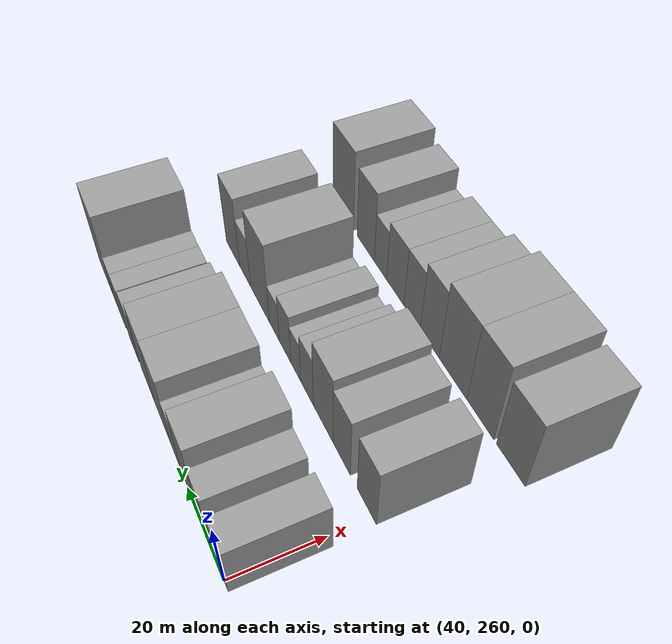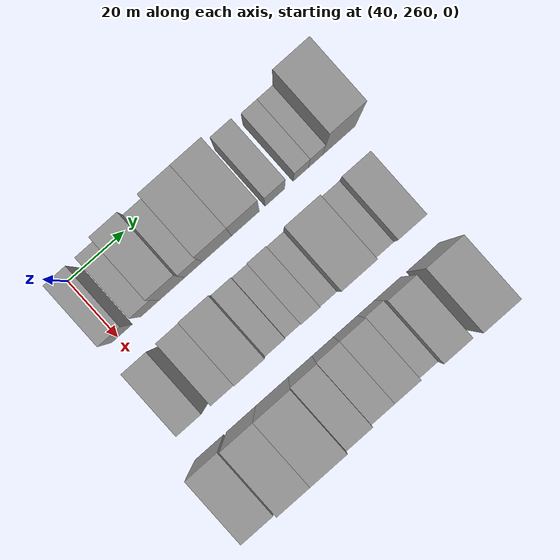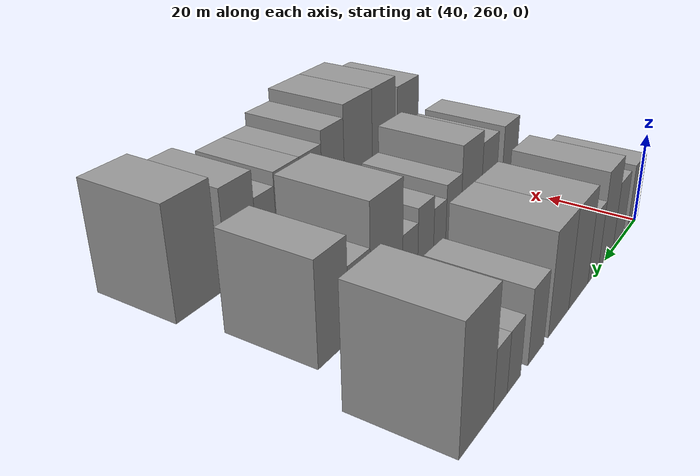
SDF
<sdf version="1.6">
 <world name="default">
  <model name="building_68">
   <static>1</static>
   <pose>50.0000 261.5313 0 0.000000 0.000000 0.000000</pose>
   <link name="link">
    <pose>0 0 7.50 0 0 0</pose>
    <collision name="collision"><geometry><box><size>20.0000 7.3618 15.0000</size></box></geometry></collision>
    <visual name="visual">
     <cast_shadows>0</cast_shadows>
     <geometry><box><size>20.0000 7.3618 15.0000</size></box></geometry>
     <material>
      <script>
       <uri>model://grey_wall/materials/scripts</uri>
       <uri>model://grey_wall/materials/textures</uri>
       <name>vrc/grey_wall</name>
      </script>
     </material>
    </visual>
   </link>
  </model>
  <model name="building_69">
   <static>1</static>
   <pose>50.0000 271.6020 0 0.000000 0.000000 0.000000</pose>
   <link name="link">
    <pose>0 0 7.50 0 0 0</pose>
    <collision name="collision"><geometry><box><size>20.0000 6.7797 15.0000</size></box></geometry></collision>
    <visual name="visual">
     <cast_shadows>0</cast_shadows>
     <geometry><box><size>20.0000 6.7797 15.0000</size></box></geometry>
     <material>
      <script>
       <uri>model://grey_wall/materials/scripts</uri>
       <uri>model://grey_wall/materials/textures</uri>
       <name>vrc/grey_wall</name>
      </script>
     </material>
    </visual>
   </link>
  </model>
  <model name="building_70">
   <static>1</static>
   <pose>50.0000 279.4677 0 0.000000 0.000000 0.000000</pose>
   <link name="link">
    <pose>0 0 10.50 0 0 0</pose>
    <collision name="collision"><geometry><box><size>20.0000 8.9516 21.0000</size></box></geometry></collision>
    <visual name="visual">
     <cast_shadows>0</cast_shadows>
     <geometry><box><size>20.0000 8.9516 21.0000</size></box></geometry>
     <material>
      <script>
       <uri>model://grey_wall/materials/scripts</uri>
       <uri>model://grey_wall/materials/textures</uri>
       <name>vrc/grey_wall</name>
      </script>
     </material>
    </visual>
   </link>
  </model>
  <model name="building_71">
   <static>1</static>
   <pose>50.0000 287.0806 0 0.000000 0.000000 0.000000</pose>
   <link name="link">
    <pose>0 0 7.50 0 0 0</pose>
    <collision name="collision"><geometry><box><size>20.0000 6.2743 15.0000</size></box></geometry></collision>
    <visual name="visual">
     <cast_shadows>0</cast_shadows>
     <geometry><box><size>20.0000 6.2743 15.0000</size></box></geometry>
     <material>
      <script>
       <uri>model://grey_wall/materials/scripts</uri>
       <uri>model://grey_wall/materials/textures</uri>
       <name>vrc/grey_wall</name>
      </script>
     </material>
    </visual>
   </link>
  </model>
  <model name="building_72">
   <static>1</static>
   <pose>50.0000 295.3811 0 0.000000 0.000000 0.000000</pose>
   <link name="link">
    <pose>0 0 10.50 0 0 0</pose>
    <collision name="collision"><geometry><box><size>20.0000 10.3266 21.0000</size></box></geometry></collision>
    <visual name="visual">
     <cast_shadows>0</cast_shadows>
     <geometry><box><size>20.0000 10.3266 21.0000</size></box></geometry>
     <material>
      <script>
       <uri>model://grey_wall/materials/scripts</uri>
       <uri>model://grey_wall/materials/textures</uri>
       <name>vrc/grey_wall</name>
      </script>
     </material>
    </visual>
   </link>
  </model>
  <model name="building_73">
   <static>1</static>
   <pose>50.0000 305.4804 0 0.000000 0.000000 0.000000</pose>
   <link name="link">
    <pose>0 0 10.50 0 0 0</pose>
    <collision name="collision"><geometry><box><size>20.0000 9.8720 21.0000</size></box></geometry></collision>
    <visual name="visual">
     <cast_shadows>0</cast_shadows>
     <geometry><box><size>20.0000 9.8720 21.0000</size></box></geometry>
     <material>
      <script>
       <uri>model://grey_wall/materials/scripts</uri>
       <uri>model://grey_wall/materials/textures</uri>
       <name>vrc/grey_wall</name>
      </script>
     </material>
    </visual>
   </link>
  </model>
  <model name="building_74">
   <static>1</static>
   <pose>50.0000 315.9014 0 0.000000 0.000000 0.000000</pose>
   <link name="link">
    <pose>0 0 7.50 0 0 0</pose>
    <collision name="collision"><geometry><box><size>20.0000 6.9698 15.0000</size></box></geometry></collision>
    <visual name="visual">
     <cast_shadows>0</cast_shadows>
     <geometry><box><size>20.0000 6.9698 15.0000</size></box></geometry>
     <material>
      <script>
       <uri>model://grey_wall/materials/scripts</uri>
       <uri>model://grey_wall/materials/textures</uri>
       <name>vrc/grey_wall</name>
      </script>
     </material>
    </visual>
   </link>
  </model>
  <model name="building_75">
   <static>1</static>
   <pose>50.0000 325.0619 0 0.000000 0.000000 0.000000</pose>
   <link name="link">
    <pose>0 0 6.00 0 0 0</pose>
    <collision name="collision"><geometry><box><size>20.0000 5.3513 12.0000</size></box></geometry></collision>
    <visual name="visual">
     <cast_shadows>0</cast_shadows>
     <geometry><box><size>20.0000 5.3513 12.0000</size></box></geometry>
     <material>
      <script>
       <uri>model://grey_wall/materials/scripts</uri>
       <uri>model://grey_wall/materials/textures</uri>
       <name>vrc/grey_wall</name>
      </script>
     </material>
    </visual>
   </link>
  </model>
  <model name="building_76">
   <static>1</static>
   <pose>50.0000 330.3383 0 0.000000 0.000000 0.000000</pose>
   <link name="link">
    <pose>0 0 6.00 0 0 0</pose>
    <collision name="collision"><geometry><box><size>20.0000 5.2015 12.0000</size></box></geometry></collision>
    <visual name="visual">
     <cast_shadows>0</cast_shadows>
     <geometry><box><size>20.0000 5.2015 12.0000</size></box></geometry>
     <material>
      <script>
       <uri>model://grey_wall/materials/scripts</uri>
       <uri>model://grey_wall/materials/textures</uri>
       <name>vrc/grey_wall</name>
      </script>
     </material>
    </visual>
   </link>
  </model>
  <model name="building_77">
   <static>1</static>
   <pose>50.0000 338.7043 0 0.000000 0.000000 0.000000</pose>
   <link name="link">
    <pose>0 0 12.00 0 0 0</pose>
    <collision name="collision"><geometry><box><size>20.0000 11.5305 24.0000</size></box></geometry></collision>
    <visual name="visual">
     <cast_shadows>0</cast_shadows>
     <geometry><box><size>20.0000 11.5305 24.0000</size></box></geometry>
     <material>
      <script>
       <uri>model://grey_wall/materials/scripts</uri>
       <uri>model://grey_wall/materials/textures</uri>
       <name>vrc/grey_wall</name>
      </script>
     </material>
    </visual>
   </link>
  </model>
  <model name="building_146">
   <static>1</static>
   <pose>79.0000 262.4623 0 0.000000 0.000000 0.000000</pose>
   <link name="link">
    <pose>0 0 9.00 0 0 0</pose>
    <collision name="collision"><geometry><box><size>20.0000 8.1072 18.0000</size></box></geometry></collision>
    <visual name="visual">
     <cast_shadows>0</cast_shadows>
     <geometry><box><size>20.0000 8.1072 18.0000</size></box></geometry>
     <material>
      <script>
       <uri>model://grey_wall/materials/scripts</uri>
       <uri>model://grey_wall/materials/textures</uri>
       <name>vrc/grey_wall</name>
      </script>
     </material>
    </visual>
   </link>
  </model>
  <model name="building_147">
   <static>1</static>
   <pose>79.0000 273.4021 0 0.000000 0.000000 0.000000</pose>
   <link name="link">
    <pose>0 0 9.00 0 0 0</pose>
    <collision name="collision"><geometry><box><size>20.0000 7.7724 18.0000</size></box></geometry></collision>
    <visual name="visual">
     <cast_shadows>0</cast_shadows>
     <geometry><box><size>20.0000 7.7724 18.0000</size></box></geometry>
     <material>
      <script>
       <uri>model://grey_wall/materials/scripts</uri>
       <uri>model://grey_wall/materials/textures</uri>
       <name>vrc/grey_wall</name>
      </script>
     </material>
    </visual>
   </link>
  </model>
  <model name="building_148">
   <static>1</static>
   <pose>79.0000 282.1046 0 0.000000 0.000000 0.000000</pose>
   <link name="link">
    <pose>0 0 10.50 0 0 0</pose>
    <collision name="collision"><geometry><box><size>20.0000 9.6325 21.0000</size></box></geometry></collision>
    <visual name="visual">
     <cast_shadows>0</cast_shadows>
     <geometry><box><size>20.0000 9.6325 21.0000</size></box></geometry>
     <material>
      <script>
       <uri>model://grey_wall/materials/scripts</uri>
       <uri>model://grey_wall/materials/textures</uri>
       <name>vrc/grey_wall</name>
      </script>
     </material>
    </visual>
   </link>
  </model>
  <model name="building_149">
   <static>1</static>
   <pose>79.0000 290.2154 0 0.000000 0.000000 0.000000</pose>
   <link name="link">
    <pose>0 0 7.50 0 0 0</pose>
    <collision name="collision"><geometry><box><size>20.0000 6.5892 15.0000</size></box></geometry></collision>
    <visual name="visual">
     <cast_shadows>0</cast_shadows>
     <geometry><box><size>20.0000 6.5892 15.0000</size></box></geometry>
     <material>
      <script>
       <uri>model://grey_wall/materials/scripts</uri>
       <uri>model://grey_wall/materials/textures</uri>
       <name>vrc/grey_wall</name>
      </script>
     </material>
    </visual>
   </link>
  </model>
  <model name="building_150">
   <static>1</static>
   <pose>79.0000 296.0943 0 0.000000 0.000000 0.000000</pose>
   <link name="link">
    <pose>0 0 6.00 0 0 0</pose>
    <collision name="collision"><geometry><box><size>20.0000 5.1684 12.0000</size></box></geometry></collision>
    <visual name="visual">
     <cast_shadows>0</cast_shadows>
     <geometry><box><size>20.0000 5.1684 12.0000</size></box></geometry>
     <material>
      <script>
       <uri>model://grey_wall/materials/scripts</uri>
       <uri>model://grey_wall/materials/textures</uri>
       <name>vrc/grey_wall</name>
      </script>
     </material>
    </visual>
   </link>
  </model>
  <model name="building_151">
   <static>1</static>
   <pose>79.0000 301.8530 0 0.000000 0.000000 0.000000</pose>
   <link name="link">
    <pose>0 0 7.50 0 0 0</pose>
    <collision name="collision"><geometry><box><size>20.0000 6.3490 15.0000</size></box></geometry></collision>
    <visual name="visual">
     <cast_shadows>0</cast_shadows>
     <geometry><box><size>20.0000 6.3490 15.0000</size></box></geometry>
     <material>
      <script>
       <uri>model://grey_wall/materials/scripts</uri>
       <uri>model://grey_wall/materials/textures</uri>
       <name>vrc/grey_wall</name>
      </script>
     </material>
    </visual>
   </link>
  </model>
  <model name="building_152">
   <static>1</static>
   <pose>79.0000 307.9113 0 0.000000 0.000000 0.000000</pose>
   <link name="link">
    <pose>0 0 6.00 0 0 0</pose>
    <collision name="collision"><geometry><box><size>20.0000 5.7678 12.0000</size></box></geometry></collision>
    <visual name="visual">
     <cast_shadows>0</cast_shadows>
     <geometry><box><size>20.0000 5.7678 12.0000</size></box></geometry>
     <material>
      <script>
       <uri>model://grey_wall/materials/scripts</uri>
       <uri>model://grey_wall/materials/textures</uri>
       <name>vrc/grey_wall</name>
      </script>
     </material>
    </visual>
   </link>
  </model>
  <model name="building_153">
   <static>1</static>
   <pose>79.0000 316.3956 0 0.000000 0.000000 0.000000</pose>
   <link name="link">
    <pose>0 0 12.00 0 0 0</pose>
    <collision name="collision"><geometry><box><size>20.0000 11.2008 24.0000</size></box></geometry></collision>
    <visual name="visual">
     <cast_shadows>0</cast_shadows>
     <geometry><box><size>20.0000 11.2008 24.0000</size></box></geometry>
     <material>
      <script>
       <uri>model://grey_wall/materials/scripts</uri>
       <uri>model://grey_wall/materials/textures</uri>
       <name>vrc/grey_wall</name>
      </script>
     </material>
    </visual>
   </link>
  </model>
  <model name="building_154">
   <static>1</static>
   <pose>79.0000 325.5256 0 0.000000 0.000000 0.000000</pose>
   <link name="link">
    <pose>0 0 7.50 0 0 0</pose>
    <collision name="collision"><geometry><box><size>20.0000 7.0592 15.0000</size></box></geometry></collision>
    <visual name="visual">
     <cast_shadows>0</cast_shadows>
     <geometry><box><size>20.0000 7.0592 15.0000</size></box></geometry>
     <material>
      <script>
       <uri>model://grey_wall/materials/scripts</uri>
       <uri>model://grey_wall/materials/textures</uri>
       <name>vrc/grey_wall</name>
      </script>
     </material>
    </visual>
   </link>
  </model>
  <model name="building_155">
   <static>1</static>
   <pose>79.0000 333.6061 0 0.000000 0.000000 0.000000</pose>
   <link name="link">
    <pose>0 0 10.50 0 0 0</pose>
    <collision name="collision"><geometry><box><size>20.0000 9.1018 21.0000</size></box></geometry></collision>
    <visual name="visual">
     <cast_shadows>0</cast_shadows>
     <geometry><box><size>20.0000 9.1018 21.0000</size></box></geometry>
     <material>
      <script>
       <uri>model://grey_wall/materials/scripts</uri>
       <uri>model://grey_wall/materials/textures</uri>
       <name>vrc/grey_wall</name>
      </script>
     </material>
    </visual>
   </link>
  </model>
  <model name="building_221">
   <static>1</static>
   <pose>108.0000 258.7253 0 0.000000 0.000000 0.000000</pose>
   <link name="link">
    <pose>0 0 10.50 0 0 0</pose>
    <collision name="collision"><geometry><box><size>20.0000 10.2802 21.0000</size></box></geometry></collision>
    <visual name="visual">
     <cast_shadows>0</cast_shadows>
     <geometry><box><size>20.0000 10.2802 21.0000</size></box></geometry>
     <material>
      <script>
       <uri>model://grey_wall/materials/scripts</uri>
       <uri>model://grey_wall/materials/textures</uri>
       <name>vrc/grey_wall</name>
      </script>
     </material>
    </visual>
   </link>
  </model>
  <model name="building_222">
   <static>1</static>
   <pose>108.0000 270.0408 0 0.000000 0.000000 0.000000</pose>
   <link name="link">
    <pose>0 0 12.00 0 0 0</pose>
    <collision name="collision"><geometry><box><size>20.0000 10.3508 24.0000</size></box></geometry></collision>
    <visual name="visual">
     <cast_shadows>0</cast_shadows>
     <geometry><box><size>20.0000 10.3508 24.0000</size></box></geometry>
     <material>
      <script>
       <uri>model://grey_wall/materials/scripts</uri>
       <uri>model://grey_wall/materials/textures</uri>
       <name>vrc/grey_wall</name>
      </script>
     </material>
    </visual>
   </link>
  </model>
  <model name="building_223">
   <static>1</static>
   <pose>108.0000 281.0241 0 0.000000 0.000000 0.000000</pose>
   <link name="link">
    <pose>0 0 12.00 0 0 0</pose>
    <collision name="collision"><geometry><box><size>20.0000 11.6156 24.0000</size></box></geometry></collision>
    <visual name="visual">
     <cast_shadows>0</cast_shadows>
     <geometry><box><size>20.0000 11.6156 24.0000</size></box></geometry>
     <material>
      <script>
       <uri>model://grey_wall/materials/scripts</uri>
       <uri>model://grey_wall/materials/textures</uri>
       <name>vrc/grey_wall</name>
      </script>
     </material>
    </visual>
   </link>
  </model>
  <model name="building_224">
   <static>1</static>
   <pose>108.0000 291.0590 0 0.000000 0.000000 0.000000</pose>
   <link name="link">
    <pose>0 0 10.50 0 0 0</pose>
    <collision name="collision"><geometry><box><size>20.0000 8.4542 21.0000</size></box></geometry></collision>
    <visual name="visual">
     <cast_shadows>0</cast_shadows>
     <geometry><box><size>20.0000 8.4542 21.0000</size></box></geometry>
     <material>
      <script>
       <uri>model://grey_wall/materials/scripts</uri>
       <uri>model://grey_wall/materials/textures</uri>
       <name>vrc/grey_wall</name>
      </script>
     </material>
    </visual>
   </link>
  </model>
  <model name="building_225">
   <static>1</static>
   <pose>108.0000 299.0884 0 0.000000 0.000000 0.000000</pose>
   <link name="link">
    <pose>0 0 9.00 0 0 0</pose>
    <collision name="collision"><geometry><box><size>20.0000 7.6045 18.0000</size></box></geometry></collision>
    <visual name="visual">
     <cast_shadows>0</cast_shadows>
     <geometry><box><size>20.0000 7.6045 18.0000</size></box></geometry>
     <material>
      <script>
       <uri>model://grey_wall/materials/scripts</uri>
       <uri>model://grey_wall/materials/textures</uri>
       <name>vrc/grey_wall</name>
      </script>
     </material>
    </visual>
   </link>
  </model>
  <model name="building_226">
   <static>1</static>
   <pose>108.0000 307.1470 0 0.000000 0.000000 0.000000</pose>
   <link name="link">
    <pose>0 0 9.00 0 0 0</pose>
    <collision name="collision"><geometry><box><size>20.0000 8.5127 18.0000</size></box></geometry></collision>
    <visual name="visual">
     <cast_shadows>0</cast_shadows>
     <geometry><box><size>20.0000 8.5127 18.0000</size></box></geometry>
     <material>
      <script>
       <uri>model://grey_wall/materials/scripts</uri>
       <uri>model://grey_wall/materials/textures</uri>
       <name>vrc/grey_wall</name>
      </script>
     </material>
    </visual>
   </link>
  </model>
  <model name="building_227">
   <static>1</static>
   <pose>108.0000 314.5357 0 0.000000 0.000000 0.000000</pose>
   <link name="link">
    <pose>0 0 7.50 0 0 0</pose>
    <collision name="collision"><geometry><box><size>20.0000 6.2646 15.0000</size></box></geometry></collision>
    <visual name="visual">
     <cast_shadows>0</cast_shadows>
     <geometry><box><size>20.0000 6.2646 15.0000</size></box></geometry>
     <material>
      <script>
       <uri>model://grey_wall/materials/scripts</uri>
       <uri>model://grey_wall/materials/textures</uri>
       <name>vrc/grey_wall</name>
      </script>
     </material>
    </visual>
   </link>
  </model>
  <model name="building_228">
   <static>1</static>
   <pose>108.0000 322.2821 0 0.000000 0.000000 0.000000</pose>
   <link name="link">
    <pose>0 0 10.50 0 0 0</pose>
    <collision name="collision"><geometry><box><size>20.0000 9.2282 21.0000</size></box></geometry></collision>
    <visual name="visual">
     <cast_shadows>0</cast_shadows>
     <geometry><box><size>20.0000 9.2282 21.0000</size></box></geometry>
     <material>
      <script>
       <uri>model://grey_wall/materials/scripts</uri>
       <uri>model://grey_wall/materials/textures</uri>
       <name>vrc/grey_wall</name>
      </script>
     </material>
    </visual>
   </link>
  </model>
  <model name="building_229">
   <static>1</static>
   <pose>108.0000 334.7929 0 0.000000 0.000000 0.000000</pose>
   <link name="link">
    <pose>0 0 12.00 0 0 0</pose>
    <collision name="collision"><geometry><box><size>20.0000 11.7933 24.0000</size></box></geometry></collision>
    <visual name="visual">
     <cast_shadows>0</cast_shadows>
     <geometry><box><size>20.0000 11.7933 24.0000</size></box></geometry>
     <material>
      <script>
       <uri>model://grey_wall/materials/scripts</uri>
       <uri>model://grey_wall/materials/textures</uri>
       <name>vrc/grey_wall</name>
      </script>
     </material>
    </visual>
   </link>
  </model>
 </world>
</sdf>
